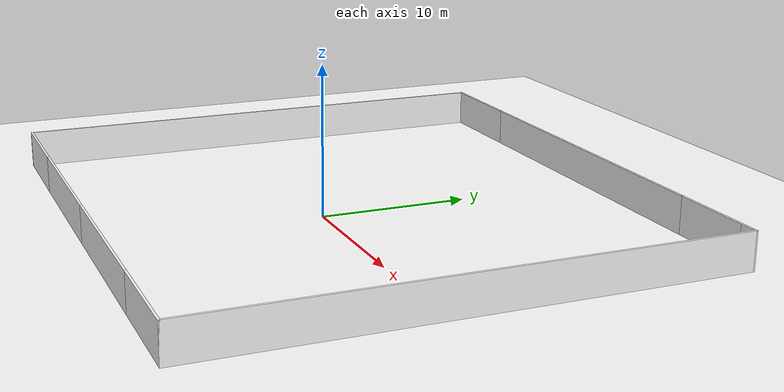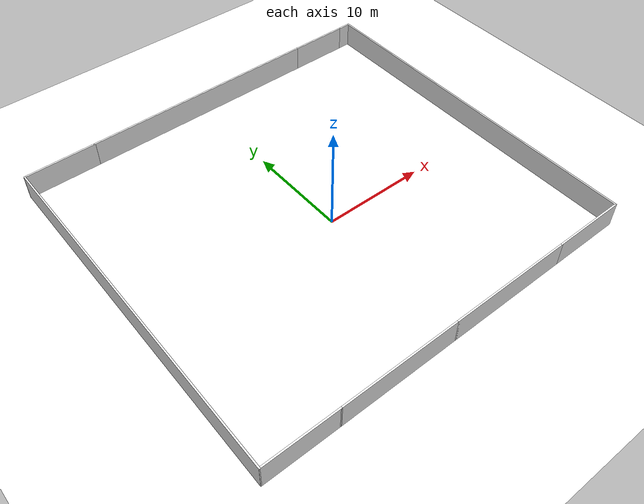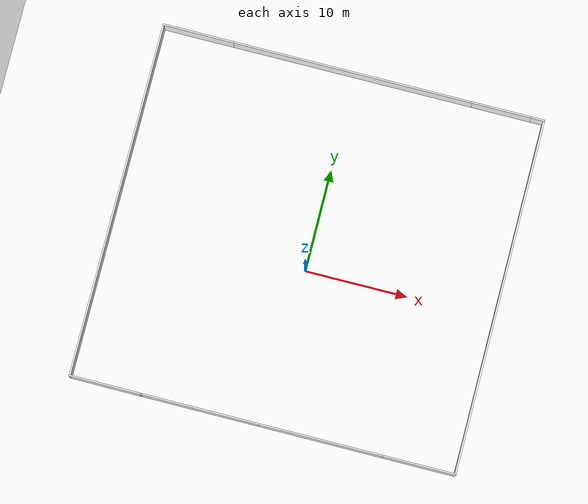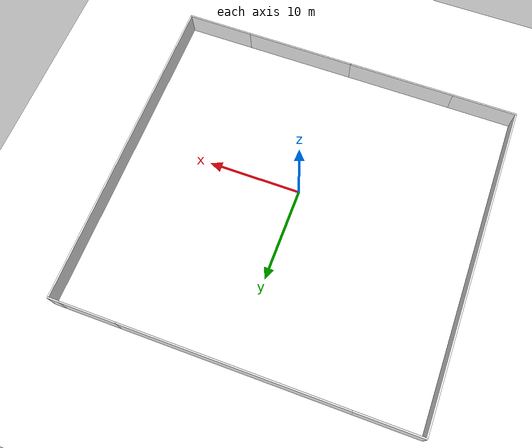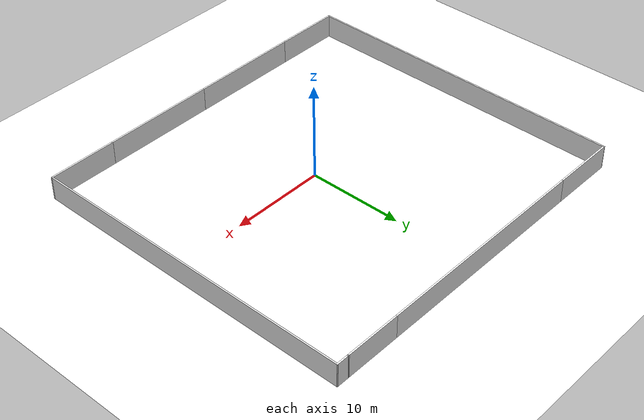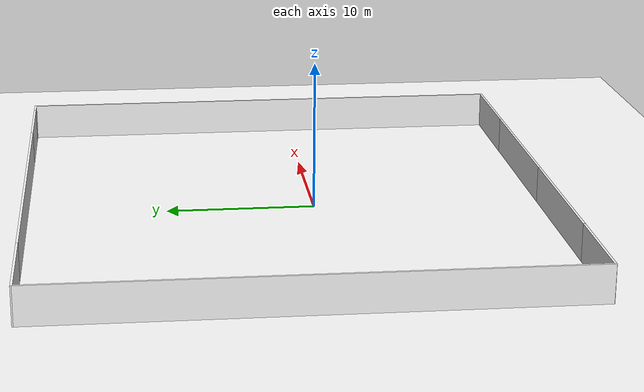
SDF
<sdf version="1.6">
 <world name="default">
  <physics name="1ms" type="ignored">
   <max_step_size>0.001</max_step_size>
   <real_time_factor>1.0</real_time_factor>
  </physics>
  <plugin filename="gz-sim-physics-system" name="gz::sim::systems::Physics">
   <render_engine>gz-physics6-bullet-plugin</render_engine>
  </plugin>
  <plugin filename="gz-sim-user-commands-system" name="gz::sim::systems::UserCommands"/>
  <plugin filename="gz-sim-scene-broadcaster-system" name="gz::sim::systems::SceneBroadcaster"/>
  <plugin filename="gz-sim-sensors-system" name="gz::sim::systems::Sensors">
   <render_engine>ogre2</render_engine>
  </plugin>
  <plugin filename="gz-sim-contact-system" name="gz::sim::systems::Contact"/>
  <plugin filename="gz-sim-imu-system" name="gz::sim::systems::Imu"/>
  <light name="sun" type="directional">
   <pose>0 0 10 0 -0 0</pose>
   <diffuse>0.8 0.8 0.8 1</diffuse>
   <specular>0.2 0.2 0.2 1</specular>
   <attenuation>
    <range>1000</range>
    <constant>0.9</constant>
    <linear>0.01</linear>
    <quadratic>0.001</quadratic>
   </attenuation>
   <direction>-0.5 0.1 -0.9</direction>
  </light>
  <model name="ground_plane">
   <static>1</static>
   <link name="link">
    <collision name="collision">
     <geometry><plane><normal>0 0 1</normal><size>100 100</size></plane></geometry>
     <surface>
      <contact><collide_bitmask>65535</collide_bitmask></contact>
      <friction><bullet><mu>100</mu></bullet></friction>
     </surface>
    </collision>
    <visual name="visual">
     <cast_shadows>0</cast_shadows>
     <geometry><plane><normal>0 0 1</normal><size>100 100</size></plane></geometry>
     <material><ambient>1 1 1 1</ambient><diffuse>1 1 1 1</diffuse></material>
    </visual>
   </link>
  </model>
  <gravity>0 0 -9.8</gravity>
  <magnetic_field>6e-06 2.3e-05 -4.2e-05</magnetic_field>
  <atmosphere type="adiabatic"/>
  <physics name="default_physics" default="0" type="ode">
   <max_step_size>0.001</max_step_size>
   <real_time_factor>1</real_time_factor>
   <real_time_update_rate>1000</real_time_update_rate>
   <bullet><friction_model>cone_model</friction_model></bullet>
  </physics>
  <scene><ambient>0.4 0.4 0.4 1</ambient><background>0.7 0.7 0.7 1</background><shadows>1</shadows></scene>
  <spherical_coordinates>
   <surface_model>EARTH_WGS84</surface_model>
   <latitude_deg>0</latitude_deg>
   <longitude_deg>0</longitude_deg>
   <elevation>0</elevation>
   <heading_deg>0</heading_deg>
  </spherical_coordinates>
  <model name="origin_axes">
   <static>true</static>
   <link name="linkX">
    <visual name="x_axis">
     <pose>0.5 0 0 0 1.57 0</pose>
     <geometry><cylinder><radius>0.02</radius><length>1</length></cylinder></geometry>
     <material><ambient>1 0 0 1</ambient><diffuse>1 0 0 1</diffuse></material>
    </visual>
   </link>
   <link name="linkY">
    <visual name="y_axis">
     <pose>0 0.5 0 -1.57 0 0</pose>
     <geometry><cylinder><radius>0.02</radius><length>1</length></cylinder></geometry>
     <material><ambient>0 1 0 1</ambient><diffuse>0 1 0 1</diffuse></material>
    </visual>
   </link>
   <link name="linkZ">
    <visual name="z_axis">
     <pose>0 0 0.5 0 0 1.57</pose>
     <geometry><cylinder><radius>0.02</radius><length>1</length></cylinder></geometry>
     <material><ambient>0 0 1 1</ambient><diffuse>0 0 1 1</diffuse></material>
    </visual>
   </link>
  </model>
  <model name="demo">
   <pose>-0.267831 1.98478 0 0 -0 1.57088</pose>
   <link name="Wall_100">
    <collision name="Wall_100_Collision">
     <geometry><box><size>7 0.15 2.5</size></box></geometry>
     <pose>0 0 1.25 0 -0 0</pose>
    </collision>
    <visual name="Wall_100_Visual">
     <pose>0 0 1.25 0 -0 0</pose>
     <geometry><box><size>7 0.15 2.5</size></box></geometry>
     <material><ambient>1 1 1 1</ambient><diffuse>1 1 1 1</diffuse></material>
     <meta><layer>0</layer></meta>
    </visual>
    <pose>17.3507 15.234 0 0 -0 1.5708</pose>
   </link>
   <link name="Wall_101">
    <collision name="Wall_101_Collision">
     <geometry><box><size>34.8299 0.15 2.5</size></box></geometry>
     <pose>0 0 1.25 0 -0 0</pose>
    </collision>
    <visual name="Wall_101_Visual">
     <pose>0 0 1.25 0 -0 0</pose>
     <geometry><box><size>34.8299 0.15 2.5</size></box></geometry>
     <material><ambient>1 1 1 1</ambient><diffuse>1 1 1 1</diffuse></material>
     <meta><layer>0</layer></meta>
    </visual>
    <pose>0.010798 18.6989 0 0 -0 3.13929</pose>
   </link>
   <link name="Wall_104">
    <collision name="Wall_104_Collision">
     <geometry><box><size>7.07983 0.15 2.5</size></box></geometry>
     <pose>0 0 1.25 0 -0 0</pose>
    </collision>
    <visual name="Wall_104_Visual">
     <pose>0 0 1.25 0 -0 0</pose>
     <geometry><box><size>7.07983 0.15 2.5</size></box></geometry>
     <material><ambient>1 1 1 1</ambient><diffuse>1 1 1 1</diffuse></material>
     <meta><layer>0</layer></meta>
    </visual>
    <pose>-17.3392 15.2739 0 0 -0 1.56788</pose>
   </link>
   <link name="Wall_32">
    <collision name="Wall_32_Collision">
     <geometry><box><size>12.09 0.15 2.5</size></box></geometry>
     <pose>0 0 1.25 0 -0 0</pose>
    </collision>
    <visual name="Wall_32_Visual">
     <pose>0 0 1.25 0 -0 0</pose>
     <geometry><box><size>12.09 0.15 2.5</size></box></geometry>
     <material><ambient>1 1 1 1</ambient><diffuse>1 1 1 1</diffuse></material>
     <meta><layer>0</layer></meta>
    </visual>
    <pose>-17.3507 -5.66889 0 0 -0 -1.5708</pose>
   </link>
   <link name="Wall_46">
    <collision name="Wall_46_Collision">
     <geometry><box><size>11.6583 0.15 2.5</size></box></geometry>
     <pose>0 0 1.25 0 -0 0</pose>
    </collision>
    <visual name="Wall_46_Visual">
     <pose>0 0 1.25 0 -0 0</pose>
     <geometry><box><size>11.6583 0.15 2.5</size></box></geometry>
     <material><ambient>1 1 1 1</ambient><diffuse>1 1 1 1</diffuse></material>
     <meta><layer>0</layer></meta>
    </visual>
    <pose>-17.35 6.05503 0 0 -0 1.57068</pose>
   </link>
   <link name="Wall_57">
    <collision name="Wall_57_Collision">
     <geometry><box><size>23.6 0.15 2.5</size></box></geometry>
     <pose>0 0 1.25 0 -0 0</pose>
    </collision>
    <visual name="Wall_57_Visual">
     <pose>0 0 1.25 0 -0 0</pose>
     <geometry><box><size>23.6 0.15 2.5</size></box></geometry>
     <material><ambient>1 1 1 1</ambient><diffuse>1 1 1 1</diffuse></material>
     <meta><layer>0</layer></meta>
    </visual>
    <pose>17.3507 0.083953 0 0 -0 -1.5708</pose>
   </link>
   <link name="Wall_69">
    <collision name="Wall_69_Collision">
     <geometry><box><size>6 0.15 2.5</size></box></geometry>
     <pose>0 0 1.25 0 -0 0</pose>
    </collision>
    <visual name="Wall_69_Visual">
     <pose>0 0 1.25 0 -0 0</pose>
     <geometry><box><size>6 0.15 2.5</size></box></geometry>
     <material><ambient>1 1 1 1</ambient><diffuse>1 1 1 1</diffuse></material>
     <meta><layer>0</layer></meta>
    </visual>
    <pose>17.3507 -14.566 0 0 -0 -1.5708</pose>
   </link>
   <link name="Wall_77">
    <collision name="Wall_77_Collision">
     <geometry><box><size>7.25 0.15 2.5</size></box></geometry>
     <pose>0 0 1.25 0 -0 0</pose>
    </collision>
    <visual name="Wall_77_Visual">
     <pose>0 0 1.25 0 -0 0</pose>
     <geometry><box><size>7.25 0.15 2.5</size></box></geometry>
     <material><ambient>1 1 1 1</ambient><diffuse>1 1 1 1</diffuse></material>
     <meta><layer>0</layer></meta>
    </visual>
    <pose>-17.3507 -15.1889 0 0 -0 -1.5708</pose>
   </link>
   <link name="Wall_78">
    <collision name="Wall_78_Collision">
     <geometry><box><size>34.85 0.15 2.5</size></box></geometry>
     <pose>0 0 1.25 0 -0 0</pose>
    </collision>
    <visual name="Wall_78_Visual">
     <pose>0 0 1.25 0 -0 0</pose>
     <geometry><box><size>34.85 0.15 2.5</size></box></geometry>
     <material><ambient>1 1 1 1</ambient><diffuse>1 1 1 1</diffuse></material>
     <meta><layer>0</layer></meta>
    </visual>
    <pose>-0.000659 -18.7389 0 0 -0 0</pose>
   </link>
   <link name="Wall_83">
    <collision name="Wall_83_Collision">
     <geometry><box><size>1.39784 0.15 2.5</size></box></geometry>
     <pose>0 0 1.25 0 -0 0</pose>
    </collision>
    <visual name="Wall_83_Visual">
     <pose>0 0 1.25 0 -0 0</pose>
     <geometry><box><size>1.39784 0.15 2.5</size></box></geometry>
     <material><ambient>1 1 1 1</ambient><diffuse>1 1 1 1</diffuse></material>
     <meta><layer>0</layer></meta>
    </visual>
    <pose>17.35 -18.115 0 0 -0 1.56971</pose>
   </link>
   <static>1</static>
  </model>
 </world>
</sdf>
